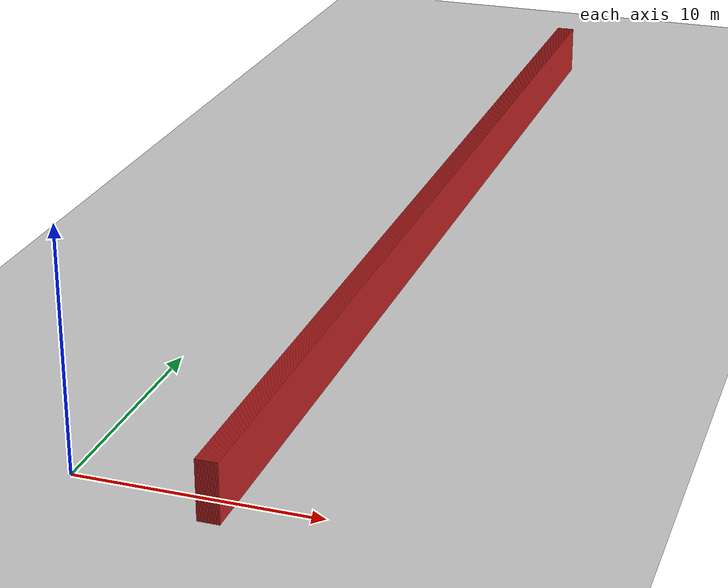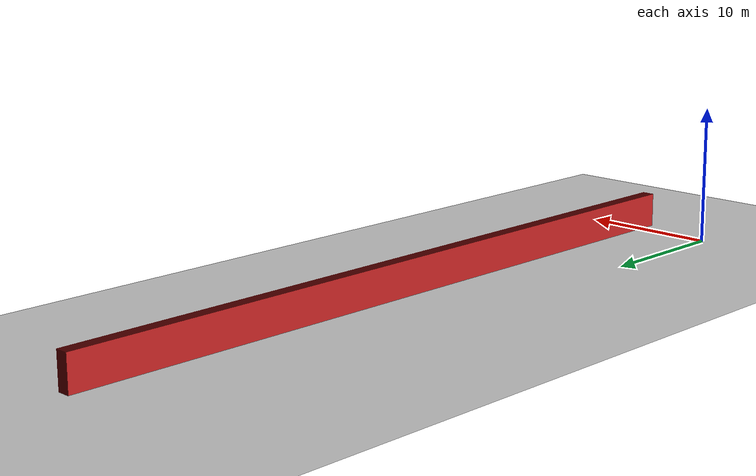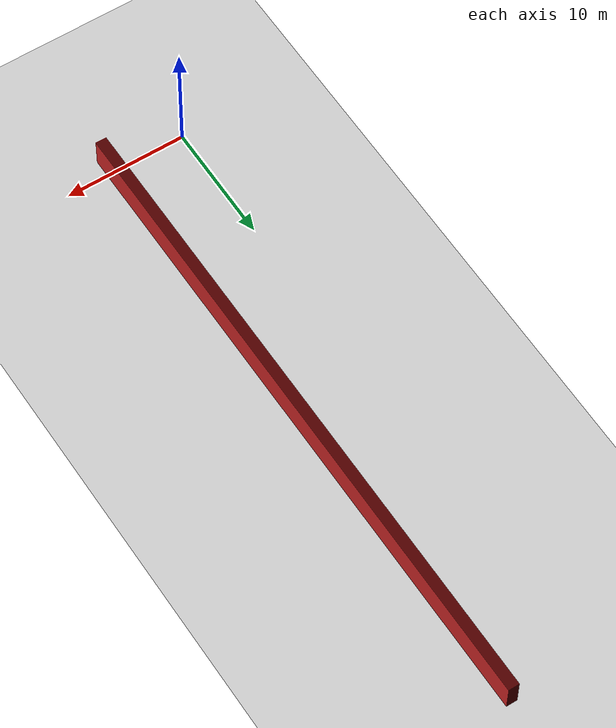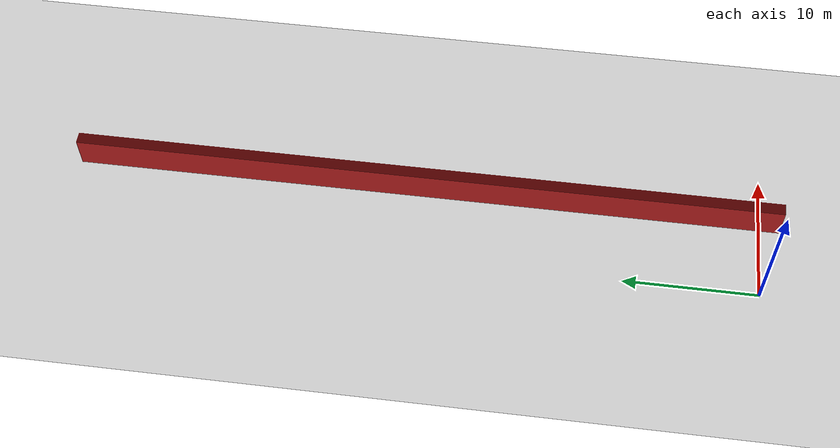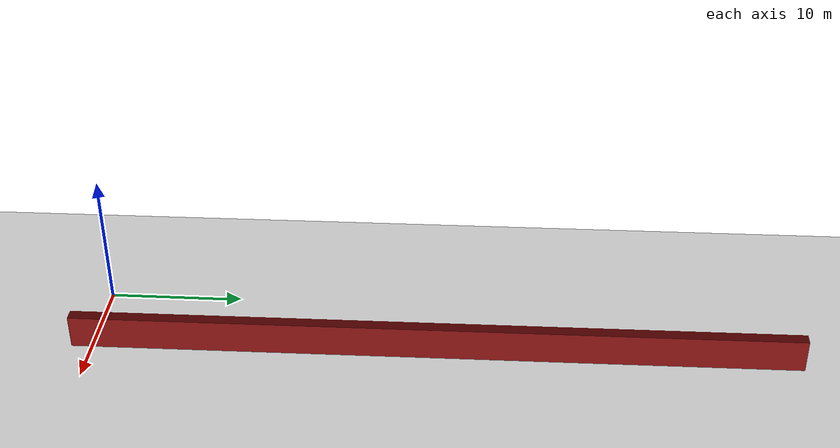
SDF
<sdf version="1.4">
 <world name="1_wall">
  <model name="ground_plane">
   <static>1</static>
   <link name="link">
    <collision name="collision">
     <geometry><plane><normal>0 0 1</normal><size>1000 1000</size></plane></geometry>
     <surface><friction><ode><mu>100</mu><mu2>50</mu2></ode></friction></surface>
    </collision>
    <visual name="visual">
     <cast_shadows>0</cast_shadows>
     <geometry><plane><normal>0 0 1</normal><size>10000 10000</size></plane></geometry>
     <material>
      <script><uri>file://media/materials/scripts/gazebo.material</uri><name>Gazebo/Grey</name></script>
     </material>
    </visual>
    <velocity_decay><linear>0</linear><angular>0</angular></velocity_decay>
   </link>
  </model>
  <model name="Wall_144">
   <static>1</static>
   <link name="Wall_144">
    <collision name="Wall_Collision_144">
     <geometry><box><size>53.65 0.05 2.5</size></box></geometry>
     <pose>0 0 1.25 0 -0 0</pose>
    </collision>
    <visual name="Wall_Visual_144">
     <pose>0 0 1.25 0 -0 0</pose>
     <geometry><box><size>53.65 0.05 2.5</size></box></geometry>
     <material>
      <script><uri>file://media/materials/scripts/gazebo.material</uri><name>Gazebo/Red</name></script>
     </material>
    </visual>
    <velocity_decay><linear>0</linear><angular>0</angular></velocity_decay>
    <pose>5.7 25.3 0 0 0 1.5707963267948966</pose>
   </link>
  </model>
  <model name="Wall_145">
   <static>1</static>
   <link name="Wall_145">
    <collision name="Wall_Collision_145">
     <geometry><box><size>53.65 0.05 2.5</size></box></geometry>
     <pose>0 0 1.25 0 -0 0</pose>
    </collision>
    <visual name="Wall_Visual_145">
     <pose>0 0 1.25 0 -0 0</pose>
     <geometry><box><size>53.65 0.05 2.5</size></box></geometry>
     <material>
      <script><uri>file://media/materials/scripts/gazebo.material</uri><name>Gazebo/Red</name></script>
     </material>
    </visual>
    <velocity_decay><linear>0</linear><angular>0</angular></velocity_decay>
    <pose>5.75 25.3 0 0 0 1.5707963267948966</pose>
   </link>
  </model>
  <model name="Wall_146">
   <static>1</static>
   <link name="Wall_146">
    <collision name="Wall_Collision_146">
     <geometry><box><size>53.65 0.05 2.5</size></box></geometry>
     <pose>0 0 1.25 0 -0 0</pose>
    </collision>
    <visual name="Wall_Visual_146">
     <pose>0 0 1.25 0 -0 0</pose>
     <geometry><box><size>53.65 0.05 2.5</size></box></geometry>
     <material>
      <script><uri>file://media/materials/scripts/gazebo.material</uri><name>Gazebo/Red</name></script>
     </material>
    </visual>
    <velocity_decay><linear>0</linear><angular>0</angular></velocity_decay>
    <pose>5.8 25.3 0 0 0 1.5707963267948966</pose>
   </link>
  </model>
  <model name="Wall_147">
   <static>1</static>
   <link name="Wall_147">
    <collision name="Wall_Collision_147">
     <geometry><box><size>53.65 0.05 2.5</size></box></geometry>
     <pose>0 0 1.25 0 -0 0</pose>
    </collision>
    <visual name="Wall_Visual_147">
     <pose>0 0 1.25 0 -0 0</pose>
     <geometry><box><size>53.65 0.05 2.5</size></box></geometry>
     <material>
      <script><uri>file://media/materials/scripts/gazebo.material</uri><name>Gazebo/Red</name></script>
     </material>
    </visual>
    <velocity_decay><linear>0</linear><angular>0</angular></velocity_decay>
    <pose>5.85 25.3 0 0 0 1.5707963267948966</pose>
   </link>
  </model>
  <model name="Wall_148">
   <static>1</static>
   <link name="Wall_148">
    <collision name="Wall_Collision_148">
     <geometry><box><size>53.65 0.05 2.5</size></box></geometry>
     <pose>0 0 1.25 0 -0 0</pose>
    </collision>
    <visual name="Wall_Visual_148">
     <pose>0 0 1.25 0 -0 0</pose>
     <geometry><box><size>53.65 0.05 2.5</size></box></geometry>
     <material>
      <script><uri>file://media/materials/scripts/gazebo.material</uri><name>Gazebo/Red</name></script>
     </material>
    </visual>
    <velocity_decay><linear>0</linear><angular>0</angular></velocity_decay>
    <pose>5.9 25.3 0 0 0 1.5707963267948966</pose>
   </link>
  </model>
  <model name="Wall_149">
   <static>1</static>
   <link name="Wall_149">
    <collision name="Wall_Collision_149">
     <geometry><box><size>53.65 0.05 2.5</size></box></geometry>
     <pose>0 0 1.25 0 -0 0</pose>
    </collision>
    <visual name="Wall_Visual_149">
     <pose>0 0 1.25 0 -0 0</pose>
     <geometry><box><size>53.65 0.05 2.5</size></box></geometry>
     <material>
      <script><uri>file://media/materials/scripts/gazebo.material</uri><name>Gazebo/Red</name></script>
     </material>
    </visual>
    <velocity_decay><linear>0</linear><angular>0</angular></velocity_decay>
    <pose>5.95 25.3 0 0 0 1.5707963267948966</pose>
   </link>
  </model>
  <model name="Wall_150">
   <static>1</static>
   <link name="Wall_150">
    <collision name="Wall_Collision_150">
     <geometry><box><size>53.65 0.05 2.5</size></box></geometry>
     <pose>0 0 1.25 0 -0 0</pose>
    </collision>
    <visual name="Wall_Visual_150">
     <pose>0 0 1.25 0 -0 0</pose>
     <geometry><box><size>53.65 0.05 2.5</size></box></geometry>
     <material>
      <script><uri>file://media/materials/scripts/gazebo.material</uri><name>Gazebo/Red</name></script>
     </material>
    </visual>
    <velocity_decay><linear>0</linear><angular>0</angular></velocity_decay>
    <pose>6.0 25.3 0 0 0 1.5707963267948966</pose>
   </link>
  </model>
  <model name="Wall_151">
   <static>1</static>
   <link name="Wall_151">
    <collision name="Wall_Collision_151">
     <geometry><box><size>53.65 0.05 2.5</size></box></geometry>
     <pose>0 0 1.25 0 -0 0</pose>
    </collision>
    <visual name="Wall_Visual_151">
     <pose>0 0 1.25 0 -0 0</pose>
     <geometry><box><size>53.65 0.05 2.5</size></box></geometry>
     <material>
      <script><uri>file://media/materials/scripts/gazebo.material</uri><name>Gazebo/Red</name></script>
     </material>
    </visual>
    <velocity_decay><linear>0</linear><angular>0</angular></velocity_decay>
    <pose>6.05 25.3 0 0 0 1.5707963267948966</pose>
   </link>
  </model>
  <model name="Wall_152">
   <static>1</static>
   <link name="Wall_152">
    <collision name="Wall_Collision_152">
     <geometry><box><size>53.65 0.05 2.5</size></box></geometry>
     <pose>0 0 1.25 0 -0 0</pose>
    </collision>
    <visual name="Wall_Visual_152">
     <pose>0 0 1.25 0 -0 0</pose>
     <geometry><box><size>53.65 0.05 2.5</size></box></geometry>
     <material>
      <script><uri>file://media/materials/scripts/gazebo.material</uri><name>Gazebo/Red</name></script>
     </material>
    </visual>
    <velocity_decay><linear>0</linear><angular>0</angular></velocity_decay>
    <pose>6.1 25.3 0 0 0 1.5707963267948966</pose>
   </link>
  </model>
  <model name="Wall_153">
   <static>1</static>
   <link name="Wall_153">
    <collision name="Wall_Collision_153">
     <geometry><box><size>53.65 0.05 2.5</size></box></geometry>
     <pose>0 0 1.25 0 -0 0</pose>
    </collision>
    <visual name="Wall_Visual_153">
     <pose>0 0 1.25 0 -0 0</pose>
     <geometry><box><size>53.65 0.05 2.5</size></box></geometry>
     <material>
      <script><uri>file://media/materials/scripts/gazebo.material</uri><name>Gazebo/Red</name></script>
     </material>
    </visual>
    <velocity_decay><linear>0</linear><angular>0</angular></velocity_decay>
    <pose>6.15 25.3 0 0 0 1.5707963267948966</pose>
   </link>
  </model>
  <model name="Wall_154">
   <static>1</static>
   <link name="Wall_154">
    <collision name="Wall_Collision_154">
     <geometry><box><size>53.65 0.05 2.5</size></box></geometry>
     <pose>0 0 1.25 0 -0 0</pose>
    </collision>
    <visual name="Wall_Visual_154">
     <pose>0 0 1.25 0 -0 0</pose>
     <geometry><box><size>53.65 0.05 2.5</size></box></geometry>
     <material>
      <script><uri>file://media/materials/scripts/gazebo.material</uri><name>Gazebo/Red</name></script>
     </material>
    </visual>
    <velocity_decay><linear>0</linear><angular>0</angular></velocity_decay>
    <pose>6.2 25.3 0 0 0 1.5707963267948966</pose>
   </link>
  </model>
  <model name="Wall_155">
   <static>1</static>
   <link name="Wall_155">
    <collision name="Wall_Collision_155">
     <geometry><box><size>53.65 0.05 2.5</size></box></geometry>
     <pose>0 0 1.25 0 -0 0</pose>
    </collision>
    <visual name="Wall_Visual_155">
     <pose>0 0 1.25 0 -0 0</pose>
     <geometry><box><size>53.65 0.05 2.5</size></box></geometry>
     <material>
      <script><uri>file://media/materials/scripts/gazebo.material</uri><name>Gazebo/Red</name></script>
     </material>
    </visual>
    <velocity_decay><linear>0</linear><angular>0</angular></velocity_decay>
    <pose>6.25 25.3 0 0 0 1.5707963267948966</pose>
   </link>
  </model>
  <model name="Wall_156">
   <static>1</static>
   <link name="Wall_156">
    <collision name="Wall_Collision_156">
     <geometry><box><size>53.65 0.05 2.5</size></box></geometry>
     <pose>0 0 1.25 0 -0 0</pose>
    </collision>
    <visual name="Wall_Visual_156">
     <pose>0 0 1.25 0 -0 0</pose>
     <geometry><box><size>53.65 0.05 2.5</size></box></geometry>
     <material>
      <script><uri>file://media/materials/scripts/gazebo.material</uri><name>Gazebo/Red</name></script>
     </material>
    </visual>
    <velocity_decay><linear>0</linear><angular>0</angular></velocity_decay>
    <pose>6.3 25.3 0 0 0 1.5707963267948966</pose>
   </link>
  </model>
  <model name="Wall_157">
   <static>1</static>
   <link name="Wall_157">
    <collision name="Wall_Collision_157">
     <geometry><box><size>53.65 0.05 2.5</size></box></geometry>
     <pose>0 0 1.25 0 -0 0</pose>
    </collision>
    <visual name="Wall_Visual_157">
     <pose>0 0 1.25 0 -0 0</pose>
     <geometry><box><size>53.65 0.05 2.5</size></box></geometry>
     <material>
      <script><uri>file://media/materials/scripts/gazebo.material</uri><name>Gazebo/Red</name></script>
     </material>
    </visual>
    <velocity_decay><linear>0</linear><angular>0</angular></velocity_decay>
    <pose>6.35 25.3 0 0 0 1.5707963267948966</pose>
   </link>
  </model>
  <model name="Wall_158">
   <static>1</static>
   <link name="Wall_158">
    <collision name="Wall_Collision_158">
     <geometry><box><size>53.65 0.05 2.5</size></box></geometry>
     <pose>0 0 1.25 0 -0 0</pose>
    </collision>
    <visual name="Wall_Visual_158">
     <pose>0 0 1.25 0 -0 0</pose>
     <geometry><box><size>53.65 0.05 2.5</size></box></geometry>
     <material>
      <script><uri>file://media/materials/scripts/gazebo.material</uri><name>Gazebo/Red</name></script>
     </material>
    </visual>
    <velocity_decay><linear>0</linear><angular>0</angular></velocity_decay>
    <pose>6.4 25.3 0 0 0 1.5707963267948966</pose>
   </link>
  </model>
  <model name="Wall_159">
   <static>1</static>
   <link name="Wall_159">
    <collision name="Wall_Collision_159">
     <geometry><box><size>53.65 0.05 2.5</size></box></geometry>
     <pose>0 0 1.25 0 -0 0</pose>
    </collision>
    <visual name="Wall_Visual_159">
     <pose>0 0 1.25 0 -0 0</pose>
     <geometry><box><size>53.65 0.05 2.5</size></box></geometry>
     <material>
      <script><uri>file://media/materials/scripts/gazebo.material</uri><name>Gazebo/Red</name></script>
     </material>
    </visual>
    <velocity_decay><linear>0</linear><angular>0</angular></velocity_decay>
    <pose>6.45 25.3 0 0 0 1.5707963267948966</pose>
   </link>
  </model>
  <model name="Wall_160">
   <static>1</static>
   <link name="Wall_160">
    <collision name="Wall_Collision_160">
     <geometry><box><size>53.65 0.05 2.5</size></box></geometry>
     <pose>0 0 1.25 0 -0 0</pose>
    </collision>
    <visual name="Wall_Visual_160">
     <pose>0 0 1.25 0 -0 0</pose>
     <geometry><box><size>53.65 0.05 2.5</size></box></geometry>
     <material>
      <script><uri>file://media/materials/scripts/gazebo.material</uri><name>Gazebo/Red</name></script>
     </material>
    </visual>
    <velocity_decay><linear>0</linear><angular>0</angular></velocity_decay>
    <pose>6.5 25.3 0 0 0 1.5707963267948966</pose>
   </link>
  </model>
  <model name="Wall_161">
   <static>1</static>
   <link name="Wall_161">
    <collision name="Wall_Collision_161">
     <geometry><box><size>53.65 0.05 2.5</size></box></geometry>
     <pose>0 0 1.25 0 -0 0</pose>
    </collision>
    <visual name="Wall_Visual_161">
     <pose>0 0 1.25 0 -0 0</pose>
     <geometry><box><size>53.65 0.05 2.5</size></box></geometry>
     <material>
      <script><uri>file://media/materials/scripts/gazebo.material</uri><name>Gazebo/Red</name></script>
     </material>
    </visual>
    <velocity_decay><linear>0</linear><angular>0</angular></velocity_decay>
    <pose>6.55 25.3 0 0 0 1.5707963267948966</pose>
   </link>
  </model>
 </world>
</sdf>
